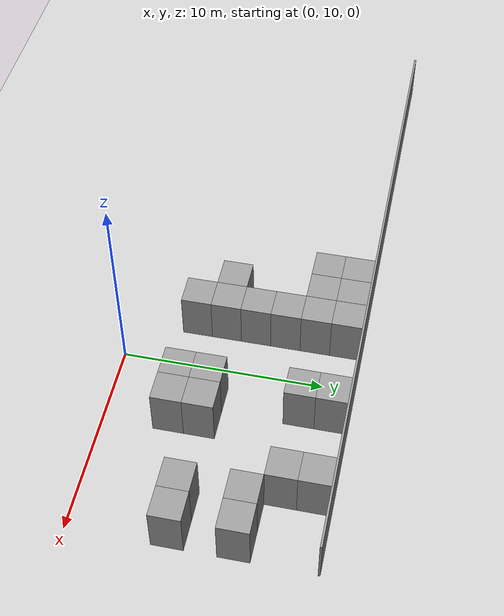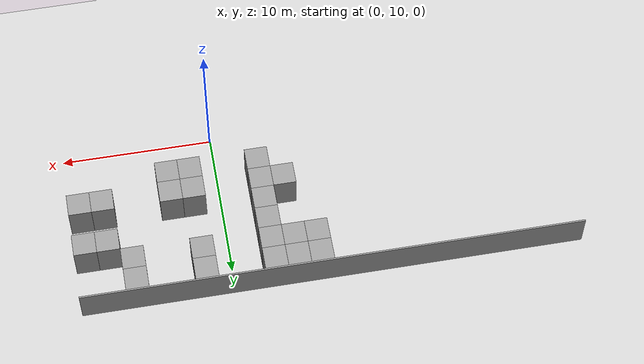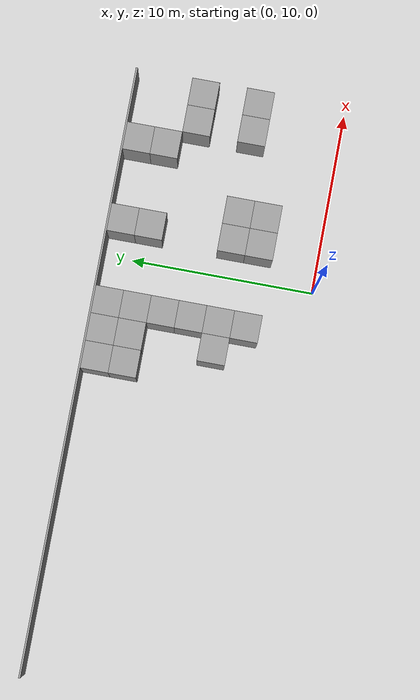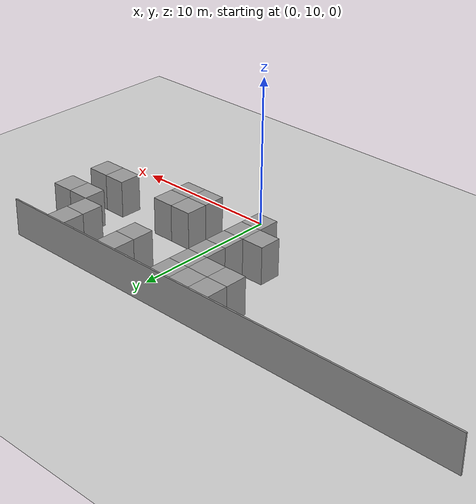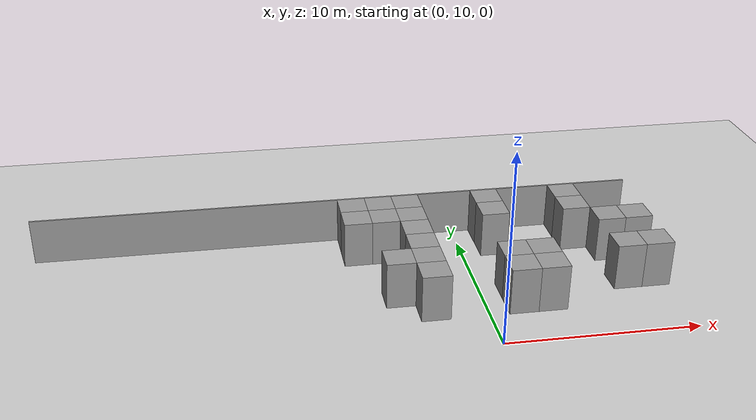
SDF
<sdf version="1.6">
 <world name="default">
  <model name="ground_plane">
   <static>1</static>
   <link name="link">
    <collision name="collision">
     <geometry><plane><normal>0 0 1</normal><size>100 100</size></plane></geometry>
     <surface><friction><ode><mu>100</mu><mu2>50</mu2></ode></friction></surface>
    </collision>
    <visual name="visual">
     <cast_shadows>0</cast_shadows>
     <geometry><plane><normal>0 0 1</normal><size>100 100</size></plane></geometry>
     <material>
      <script><uri>file://media/materials/scripts/gazebo.material</uri><name>Gazebo/Grey</name></script>
     </material>
    </visual>
   </link>
  </model>
  <model name="wall_1.5_1.5_14">
   <link name="Wall_2">
    <inertial>
     <mass>10</mass>
     <inertia><ixx>1</ixx><ixy>0</ixy><ixz>0</ixz><iyy>1</iyy><iyz>0</iyz><izz>1</izz></inertia>
    </inertial>
    <visual name="Wall_2_Visual">
     <pose>0 0 1.25 0 -0 0</pose>
     <geometry><box><size>1.5 1.5 2.5</size></box></geometry>
     <material>
      <script><uri>file://media/materials/scripts/gazebo.material</uri><name>Gazebo/Grey</name></script>
      <ambient>1 1 1 1</ambient>
      <diffuse>0.7 0.7 0.7 1</diffuse>
      <specular>0.01 0.01 0.01 1</specular>
      <emissive>0 0 0 1</emissive>
      <shader type="vertex"><normal_map>__default__</normal_map></shader>
     </material>
    </visual>
    <collision name="Wall_2_Collision">
     <pose>0 0 1.25 0 -0 0</pose>
     <geometry><box><size>1.5 1.5 2.5</size></box></geometry>
     <surface>
      <friction>
       <ode><mu>1</mu><mu2>1</mu2><fdir1>0 0 0</fdir1><slip1>0</slip1><slip2>0</slip2></ode>
       <torsional>
        <coefficient>1</coefficient>
        <patch_radius>0</patch_radius>
        <surface_radius>0</surface_radius>
        <use_patch_radius>1</use_patch_radius>
        <ode><slip>0</slip></ode>
       </torsional>
      </friction>
      <bounce><restitution_coefficient>0</restitution_coefficient><threshold>1e+06</threshold></bounce>
      <contact>
       <collide_without_contact>0</collide_without_contact>
       <collide_without_contact_bitmask>1</collide_without_contact_bitmask>
       <collide_bitmask>1</collide_bitmask>
       <ode>
        <soft_cfm>0</soft_cfm>
        <soft_erp>0.2</soft_erp>
        <kp>1e+13</kp>
        <kd>1</kd>
        <max_vel>0.01</max_vel>
        <min_depth>0</min_depth>
       </ode>
       <bullet>
        <split_impulse>1</split_impulse>
        <split_impulse_penetration_threshold>-0.01</split_impulse_penetration_threshold>
        <soft_cfm>0</soft_cfm>
        <soft_erp>0.2</soft_erp>
        <kp>1e+13</kp>
        <kd>1</kd>
       </bullet>
      </contact>
     </surface>
    </collision>
   </link>
   <static>1</static>
   <pose>9.25 14.75 0 0 -0 0</pose>
  </model>
  <model name="wall_1.5_1.5_15">
   <link name="Wall_2">
    <inertial>
     <mass>10</mass>
     <inertia><ixx>1</ixx><ixy>0</ixy><ixz>0</ixz><iyy>1</iyy><iyz>0</iyz><izz>1</izz></inertia>
    </inertial>
    <visual name="Wall_2_Visual">
     <pose>0 0 1.25 0 -0 0</pose>
     <geometry><box><size>1.5 1.5 2.5</size></box></geometry>
     <material>
      <script><uri>file://media/materials/scripts/gazebo.material</uri><name>Gazebo/Grey</name></script>
      <ambient>1 1 1 1</ambient>
      <diffuse>0.7 0.7 0.7 1</diffuse>
      <specular>0.01 0.01 0.01 1</specular>
      <emissive>0 0 0 1</emissive>
      <shader type="vertex"><normal_map>__default__</normal_map></shader>
     </material>
    </visual>
    <collision name="Wall_2_Collision">
     <pose>0 0 1.25 0 -0 0</pose>
     <geometry><box><size>1.5 1.5 2.5</size></box></geometry>
     <surface>
      <friction>
       <ode><mu>1</mu><mu2>1</mu2><fdir1>0 0 0</fdir1><slip1>0</slip1><slip2>0</slip2></ode>
       <torsional>
        <coefficient>1</coefficient>
        <patch_radius>0</patch_radius>
        <surface_radius>0</surface_radius>
        <use_patch_radius>1</use_patch_radius>
        <ode><slip>0</slip></ode>
       </torsional>
      </friction>
      <bounce><restitution_coefficient>0</restitution_coefficient><threshold>1e+06</threshold></bounce>
      <contact>
       <collide_without_contact>0</collide_without_contact>
       <collide_without_contact_bitmask>1</collide_without_contact_bitmask>
       <collide_bitmask>1</collide_bitmask>
       <ode>
        <soft_cfm>0</soft_cfm>
        <soft_erp>0.2</soft_erp>
        <kp>1e+13</kp>
        <kd>1</kd>
        <max_vel>0.01</max_vel>
        <min_depth>0</min_depth>
       </ode>
       <bullet>
        <split_impulse>1</split_impulse>
        <split_impulse_penetration_threshold>-0.01</split_impulse_penetration_threshold>
        <soft_cfm>0</soft_cfm>
        <soft_erp>0.2</soft_erp>
        <kp>1e+13</kp>
        <kd>1</kd>
       </bullet>
      </contact>
     </surface>
    </collision>
   </link>
   <static>1</static>
   <pose>9.25 17.75 0 0 -0 0</pose>
  </model>
  <model name="wall_1.5_1.5_17">
   <link name="Wall_2">
    <inertial>
     <mass>10</mass>
     <inertia><ixx>1</ixx><ixy>0</ixy><ixz>0</ixz><iyy>1</iyy><iyz>0</iyz><izz>1</izz></inertia>
    </inertial>
    <visual name="Wall_2_Visual">
     <pose>0 0 1.25 0 -0 0</pose>
     <geometry><box><size>1.5 1.5 2.5</size></box></geometry>
     <material>
      <script><uri>file://media/materials/scripts/gazebo.material</uri><name>Gazebo/Grey</name></script>
      <ambient>1 1 1 1</ambient>
      <diffuse>0.7 0.7 0.7 1</diffuse>
      <specular>0.01 0.01 0.01 1</specular>
      <emissive>0 0 0 1</emissive>
      <shader type="vertex"><normal_map>__default__</normal_map></shader>
     </material>
    </visual>
    <collision name="Wall_2_Collision">
     <pose>0 0 1.25 0 -0 0</pose>
     <geometry><box><size>1.5 1.5 2.5</size></box></geometry>
     <surface>
      <friction>
       <ode><mu>1</mu><mu2>1</mu2><fdir1>0 0 0</fdir1><slip1>0</slip1><slip2>0</slip2></ode>
       <torsional>
        <coefficient>1</coefficient>
        <patch_radius>0</patch_radius>
        <surface_radius>0</surface_radius>
        <use_patch_radius>1</use_patch_radius>
        <ode><slip>0</slip></ode>
       </torsional>
      </friction>
      <bounce><restitution_coefficient>0</restitution_coefficient><threshold>1e+06</threshold></bounce>
      <contact>
       <collide_without_contact>0</collide_without_contact>
       <collide_without_contact_bitmask>1</collide_without_contact_bitmask>
       <collide_bitmask>1</collide_bitmask>
       <ode>
        <soft_cfm>0</soft_cfm>
        <soft_erp>0.2</soft_erp>
        <kp>1e+13</kp>
        <kd>1</kd>
        <max_vel>0.01</max_vel>
        <min_depth>0</min_depth>
       </ode>
       <bullet>
        <split_impulse>1</split_impulse>
        <split_impulse_penetration_threshold>-0.01</split_impulse_penetration_threshold>
        <soft_cfm>0</soft_cfm>
        <soft_erp>0.2</soft_erp>
        <kp>1e+13</kp>
        <kd>1</kd>
       </bullet>
      </contact>
     </surface>
    </collision>
   </link>
   <static>1</static>
   <pose>7.75 14.75 0 0 -0 0</pose>
  </model>
  <model name="wall_1.5_1.5_18">
   <link name="Wall_2">
    <inertial>
     <mass>10</mass>
     <inertia><ixx>1</ixx><ixy>0</ixy><ixz>0</ixz><iyy>1</iyy><iyz>0</iyz><izz>1</izz></inertia>
    </inertial>
    <visual name="Wall_2_Visual">
     <pose>0 0 1.25 0 -0 0</pose>
     <geometry><box><size>1.5 1.5 2.5</size></box></geometry>
     <material>
      <script><uri>file://media/materials/scripts/gazebo.material</uri><name>Gazebo/Grey</name></script>
      <ambient>1 1 1 1</ambient>
      <diffuse>0.7 0.7 0.7 1</diffuse>
      <specular>0.01 0.01 0.01 1</specular>
      <emissive>0 0 0 1</emissive>
      <shader type="vertex"><normal_map>__default__</normal_map></shader>
     </material>
    </visual>
    <collision name="Wall_2_Collision">
     <pose>0 0 1.25 0 -0 0</pose>
     <geometry><box><size>1.5 1.5 2.5</size></box></geometry>
     <surface>
      <friction>
       <ode><mu>1</mu><mu2>1</mu2><fdir1>0 0 0</fdir1><slip1>0</slip1><slip2>0</slip2></ode>
       <torsional>
        <coefficient>1</coefficient>
        <patch_radius>0</patch_radius>
        <surface_radius>0</surface_radius>
        <use_patch_radius>1</use_patch_radius>
        <ode><slip>0</slip></ode>
       </torsional>
      </friction>
      <bounce><restitution_coefficient>0</restitution_coefficient><threshold>1e+06</threshold></bounce>
      <contact>
       <collide_without_contact>0</collide_without_contact>
       <collide_without_contact_bitmask>1</collide_without_contact_bitmask>
       <collide_bitmask>1</collide_bitmask>
       <ode>
        <soft_cfm>0</soft_cfm>
        <soft_erp>0.2</soft_erp>
        <kp>1e+13</kp>
        <kd>1</kd>
        <max_vel>0.01</max_vel>
        <min_depth>0</min_depth>
       </ode>
       <bullet>
        <split_impulse>1</split_impulse>
        <split_impulse_penetration_threshold>-0.01</split_impulse_penetration_threshold>
        <soft_cfm>0</soft_cfm>
        <soft_erp>0.2</soft_erp>
        <kp>1e+13</kp>
        <kd>1</kd>
       </bullet>
      </contact>
     </surface>
    </collision>
   </link>
   <static>1</static>
   <pose>7.75 17.75 0 0 -0 0</pose>
  </model>
  <model name="wall_1.5_1.5_19">
   <link name="Wall_2">
    <inertial>
     <mass>10</mass>
     <inertia><ixx>1</ixx><ixy>0</ixy><ixz>0</ixz><iyy>1</iyy><iyz>0</iyz><izz>1</izz></inertia>
    </inertial>
    <visual name="Wall_2_Visual">
     <pose>0 0 1.25 0 -0 0</pose>
     <geometry><box><size>1.5 1.5 2.5</size></box></geometry>
     <material>
      <script><uri>file://media/materials/scripts/gazebo.material</uri><name>Gazebo/Grey</name></script>
      <ambient>1 1 1 1</ambient>
      <diffuse>0.7 0.7 0.7 1</diffuse>
      <specular>0.01 0.01 0.01 1</specular>
      <emissive>0 0 0 1</emissive>
      <shader type="vertex"><normal_map>__default__</normal_map></shader>
     </material>
    </visual>
    <collision name="Wall_2_Collision">
     <pose>0 0 1.25 0 -0 0</pose>
     <geometry><box><size>1.5 1.5 2.5</size></box></geometry>
     <surface>
      <friction>
       <ode><mu>1</mu><mu2>1</mu2><fdir1>0 0 0</fdir1><slip1>0</slip1><slip2>0</slip2></ode>
       <torsional>
        <coefficient>1</coefficient>
        <patch_radius>0</patch_radius>
        <surface_radius>0</surface_radius>
        <use_patch_radius>1</use_patch_radius>
        <ode><slip>0</slip></ode>
       </torsional>
      </friction>
      <bounce><restitution_coefficient>0</restitution_coefficient><threshold>1e+06</threshold></bounce>
      <contact>
       <collide_without_contact>0</collide_without_contact>
       <collide_without_contact_bitmask>1</collide_without_contact_bitmask>
       <collide_bitmask>1</collide_bitmask>
       <ode>
        <soft_cfm>0</soft_cfm>
        <soft_erp>0.2</soft_erp>
        <kp>1e+13</kp>
        <kd>1</kd>
        <max_vel>0.01</max_vel>
        <min_depth>0</min_depth>
       </ode>
       <bullet>
        <split_impulse>1</split_impulse>
        <split_impulse_penetration_threshold>-0.01</split_impulse_penetration_threshold>
        <soft_cfm>0</soft_cfm>
        <soft_erp>0.2</soft_erp>
        <kp>1e+13</kp>
        <kd>1</kd>
       </bullet>
      </contact>
     </surface>
    </collision>
   </link>
   <static>1</static>
   <pose>6.25 20.75 0 0 -0 0</pose>
  </model>
  <model name="wall_1.5_1.5_20">
   <link name="Wall_2">
    <inertial>
     <mass>10</mass>
     <inertia><ixx>1</ixx><ixy>0</ixy><ixz>0</ixz><iyy>1</iyy><iyz>0</iyz><izz>1</izz></inertia>
    </inertial>
    <visual name="Wall_2_Visual">
     <pose>0 0 1.25 0 -0 0</pose>
     <geometry><box><size>1.5 1.5 2.5</size></box></geometry>
     <material>
      <script><uri>file://media/materials/scripts/gazebo.material</uri><name>Gazebo/Grey</name></script>
      <ambient>1 1 1 1</ambient>
      <diffuse>0.7 0.7 0.7 1</diffuse>
      <specular>0.01 0.01 0.01 1</specular>
      <emissive>0 0 0 1</emissive>
      <shader type="vertex"><normal_map>__default__</normal_map></shader>
     </material>
    </visual>
    <collision name="Wall_2_Collision">
     <pose>0 0 1.25 0 -0 0</pose>
     <geometry><box><size>1.5 1.5 2.5</size></box></geometry>
     <surface>
      <friction>
       <ode><mu>1</mu><mu2>1</mu2><fdir1>0 0 0</fdir1><slip1>0</slip1><slip2>0</slip2></ode>
       <torsional>
        <coefficient>1</coefficient>
        <patch_radius>0</patch_radius>
        <surface_radius>0</surface_radius>
        <use_patch_radius>1</use_patch_radius>
        <ode><slip>0</slip></ode>
       </torsional>
      </friction>
      <bounce><restitution_coefficient>0</restitution_coefficient><threshold>1e+06</threshold></bounce>
      <contact>
       <collide_without_contact>0</collide_without_contact>
       <collide_without_contact_bitmask>1</collide_without_contact_bitmask>
       <collide_bitmask>1</collide_bitmask>
       <ode>
        <soft_cfm>0</soft_cfm>
        <soft_erp>0.2</soft_erp>
        <kp>1e+13</kp>
        <kd>1</kd>
        <max_vel>0.01</max_vel>
        <min_depth>0</min_depth>
       </ode>
       <bullet>
        <split_impulse>1</split_impulse>
        <split_impulse_penetration_threshold>-0.01</split_impulse_penetration_threshold>
        <soft_cfm>0</soft_cfm>
        <soft_erp>0.2</soft_erp>
        <kp>1e+13</kp>
        <kd>1</kd>
       </bullet>
      </contact>
     </surface>
    </collision>
   </link>
   <static>1</static>
   <pose>1.75 20.75 0 0 -0 0</pose>
  </model>
  <model name="wall_1.5_1.5_35">
   <link name="Wall_2">
    <inertial>
     <mass>10</mass>
     <inertia><ixx>1</ixx><ixy>0</ixy><ixz>0</ixz><iyy>1</iyy><iyz>0</iyz><izz>1</izz></inertia>
    </inertial>
    <visual name="Wall_2_Visual">
     <pose>0 0 1.25 0 -0 0</pose>
     <geometry><box><size>1.5 1.5 2.5</size></box></geometry>
     <material>
      <script><uri>file://media/materials/scripts/gazebo.material</uri><name>Gazebo/Grey</name></script>
      <ambient>1 1 1 1</ambient>
      <diffuse>0.7 0.7 0.7 1</diffuse>
      <specular>0.01 0.01 0.01 1</specular>
      <emissive>0 0 0 1</emissive>
      <shader type="vertex"><normal_map>__default__</normal_map></shader>
     </material>
    </visual>
    <collision name="Wall_2_Collision">
     <pose>0 0 1.25 0 -0 0</pose>
     <geometry><box><size>1.5 1.5 2.5</size></box></geometry>
     <surface>
      <friction>
       <ode><mu>1</mu><mu2>1</mu2><fdir1>0 0 0</fdir1><slip1>0</slip1><slip2>0</slip2></ode>
       <torsional>
        <coefficient>1</coefficient>
        <patch_radius>0</patch_radius>
        <surface_radius>0</surface_radius>
        <use_patch_radius>1</use_patch_radius>
        <ode><slip>0</slip></ode>
       </torsional>
      </friction>
      <bounce><restitution_coefficient>0</restitution_coefficient><threshold>1e+06</threshold></bounce>
      <contact>
       <collide_without_contact>0</collide_without_contact>
       <collide_without_contact_bitmask>1</collide_without_contact_bitmask>
       <collide_bitmask>1</collide_bitmask>
       <ode>
        <soft_cfm>0</soft_cfm>
        <soft_erp>0.2</soft_erp>
        <kp>1e+13</kp>
        <kd>1</kd>
        <max_vel>0.01</max_vel>
        <min_depth>0</min_depth>
       </ode>
       <bullet>
        <split_impulse>1</split_impulse>
        <split_impulse_penetration_threshold>-0.01</split_impulse_penetration_threshold>
        <soft_cfm>0</soft_cfm>
        <soft_erp>0.2</soft_erp>
        <kp>1e+13</kp>
        <kd>1</kd>
       </bullet>
      </contact>
     </surface>
    </collision>
   </link>
   <static>1</static>
   <pose>1.75 13.25 0 0 -0 0</pose>
  </model>
  <model name="wall_1.5_1.5_36">
   <link name="Wall_2">
    <inertial>
     <mass>10</mass>
     <inertia><ixx>1</ixx><ixy>0</ixy><ixz>0</ixz><iyy>1</iyy><iyz>0</iyz><izz>1</izz></inertia>
    </inertial>
    <visual name="Wall_2_Visual">
     <pose>0 0 1.25 0 -0 0</pose>
     <geometry><box><size>1.5 1.5 2.5</size></box></geometry>
     <material>
      <script><uri>file://media/materials/scripts/gazebo.material</uri><name>Gazebo/Grey</name></script>
      <ambient>1 1 1 1</ambient>
      <diffuse>0.7 0.7 0.7 1</diffuse>
      <specular>0.01 0.01 0.01 1</specular>
      <emissive>0 0 0 1</emissive>
      <shader type="vertex"><normal_map>__default__</normal_map></shader>
     </material>
    </visual>
    <collision name="Wall_2_Collision">
     <pose>0 0 1.25 0 -0 0</pose>
     <geometry><box><size>1.5 1.5 2.5</size></box></geometry>
     <surface>
      <friction>
       <ode><mu>1</mu><mu2>1</mu2><fdir1>0 0 0</fdir1><slip1>0</slip1><slip2>0</slip2></ode>
       <torsional>
        <coefficient>1</coefficient>
        <patch_radius>0</patch_radius>
        <surface_radius>0</surface_radius>
        <use_patch_radius>1</use_patch_radius>
        <ode><slip>0</slip></ode>
       </torsional>
      </friction>
      <bounce><restitution_coefficient>0</restitution_coefficient><threshold>1e+06</threshold></bounce>
      <contact>
       <collide_without_contact>0</collide_without_contact>
       <collide_without_contact_bitmask>1</collide_without_contact_bitmask>
       <collide_bitmask>1</collide_bitmask>
       <ode>
        <soft_cfm>0</soft_cfm>
        <soft_erp>0.2</soft_erp>
        <kp>1e+13</kp>
        <kd>1</kd>
        <max_vel>0.01</max_vel>
        <min_depth>0</min_depth>
       </ode>
       <bullet>
        <split_impulse>1</split_impulse>
        <split_impulse_penetration_threshold>-0.01</split_impulse_penetration_threshold>
        <soft_cfm>0</soft_cfm>
        <soft_erp>0.2</soft_erp>
        <kp>1e+13</kp>
        <kd>1</kd>
       </bullet>
      </contact>
     </surface>
    </collision>
   </link>
   <static>1</static>
   <pose>3.25 13.25 0 0 -0 0</pose>
  </model>
  <model name="wall_1.5_1.5_37">
   <link name="Wall_2">
    <inertial>
     <mass>10</mass>
     <inertia><ixx>1</ixx><ixy>0</ixy><ixz>0</ixz><iyy>1</iyy><iyz>0</iyz><izz>1</izz></inertia>
    </inertial>
    <visual name="Wall_2_Visual">
     <pose>0 0 1.25 0 -0 0</pose>
     <geometry><box><size>1.5 1.5 2.5</size></box></geometry>
     <material>
      <script><uri>file://media/materials/scripts/gazebo.material</uri><name>Gazebo/Grey</name></script>
      <ambient>1 1 1 1</ambient>
      <diffuse>0.7 0.7 0.7 1</diffuse>
      <specular>0.01 0.01 0.01 1</specular>
      <emissive>0 0 0 1</emissive>
      <shader type="vertex"><normal_map>__default__</normal_map></shader>
     </material>
    </visual>
    <collision name="Wall_2_Collision">
     <pose>0 0 1.25 0 -0 0</pose>
     <geometry><box><size>1.5 1.5 2.5</size></box></geometry>
     <surface>
      <friction>
       <ode><mu>1</mu><mu2>1</mu2><fdir1>0 0 0</fdir1><slip1>0</slip1><slip2>0</slip2></ode>
       <torsional>
        <coefficient>1</coefficient>
        <patch_radius>0</patch_radius>
        <surface_radius>0</surface_radius>
        <use_patch_radius>1</use_patch_radius>
        <ode><slip>0</slip></ode>
       </torsional>
      </friction>
      <bounce><restitution_coefficient>0</restitution_coefficient><threshold>1e+06</threshold></bounce>
      <contact>
       <collide_without_contact>0</collide_without_contact>
       <collide_without_contact_bitmask>1</collide_without_contact_bitmask>
       <collide_bitmask>1</collide_bitmask>
       <ode>
        <soft_cfm>0</soft_cfm>
        <soft_erp>0.2</soft_erp>
        <kp>1e+13</kp>
        <kd>1</kd>
        <max_vel>0.01</max_vel>
        <min_depth>0</min_depth>
       </ode>
       <bullet>
        <split_impulse>1</split_impulse>
        <split_impulse_penetration_threshold>-0.01</split_impulse_penetration_threshold>
        <soft_cfm>0</soft_cfm>
        <soft_erp>0.2</soft_erp>
        <kp>1e+13</kp>
        <kd>1</kd>
       </bullet>
      </contact>
     </surface>
    </collision>
   </link>
   <static>1</static>
   <pose>1.75 19.25 0 0 -0 0</pose>
  </model>
  <model name="wall_1.5_1.5_38">
   <link name="Wall_2">
    <inertial>
     <mass>10</mass>
     <inertia><ixx>1</ixx><ixy>0</ixy><ixz>0</ixz><iyy>1</iyy><iyz>0</iyz><izz>1</izz></inertia>
    </inertial>
    <visual name="Wall_2_Visual">
     <pose>0 0 1.25 0 -0 0</pose>
     <geometry><box><size>1.5 1.5 2.5</size></box></geometry>
     <material>
      <script><uri>file://media/materials/scripts/gazebo.material</uri><name>Gazebo/Grey</name></script>
      <ambient>1 1 1 1</ambient>
      <diffuse>0.7 0.7 0.7 1</diffuse>
      <specular>0.01 0.01 0.01 1</specular>
      <emissive>0 0 0 1</emissive>
      <shader type="vertex"><normal_map>__default__</normal_map></shader>
     </material>
    </visual>
    <collision name="Wall_2_Collision">
     <pose>0 0 1.25 0 -0 0</pose>
     <geometry><box><size>1.5 1.5 2.5</size></box></geometry>
     <surface>
      <friction>
       <ode><mu>1</mu><mu2>1</mu2><fdir1>0 0 0</fdir1><slip1>0</slip1><slip2>0</slip2></ode>
       <torsional>
        <coefficient>1</coefficient>
        <patch_radius>0</patch_radius>
        <surface_radius>0</surface_radius>
        <use_patch_radius>1</use_patch_radius>
        <ode><slip>0</slip></ode>
       </torsional>
      </friction>
      <bounce><restitution_coefficient>0</restitution_coefficient><threshold>1e+06</threshold></bounce>
      <contact>
       <collide_without_contact>0</collide_without_contact>
       <collide_without_contact_bitmask>1</collide_without_contact_bitmask>
       <collide_bitmask>1</collide_bitmask>
       <ode>
        <soft_cfm>0</soft_cfm>
        <soft_erp>0.2</soft_erp>
        <kp>1e+13</kp>
        <kd>1</kd>
        <max_vel>0.01</max_vel>
        <min_depth>0</min_depth>
       </ode>
       <bullet>
        <split_impulse>1</split_impulse>
        <split_impulse_penetration_threshold>-0.01</split_impulse_penetration_threshold>
        <soft_cfm>0</soft_cfm>
        <soft_erp>0.2</soft_erp>
        <kp>1e+13</kp>
        <kd>1</kd>
       </bullet>
      </contact>
     </surface>
    </collision>
   </link>
   <static>1</static>
   <pose>1.75 14.75 0 0 -0 0</pose>
  </model>
  <model name="wall_1.5_1.5_39">
   <link name="Wall_2">
    <inertial>
     <mass>10</mass>
     <inertia><ixx>1</ixx><ixy>0</ixy><ixz>0</ixz><iyy>1</iyy><iyz>0</iyz><izz>1</izz></inertia>
    </inertial>
    <visual name="Wall_2_Visual">
     <pose>0 0 1.25 0 -0 0</pose>
     <geometry><box><size>1.5 1.5 2.5</size></box></geometry>
     <material>
      <script><uri>file://media/materials/scripts/gazebo.material</uri><name>Gazebo/Grey</name></script>
      <ambient>1 1 1 1</ambient>
      <diffuse>0.7 0.7 0.7 1</diffuse>
      <specular>0.01 0.01 0.01 1</specular>
      <emissive>0 0 0 1</emissive>
      <shader type="vertex"><normal_map>__default__</normal_map></shader>
     </material>
    </visual>
    <collision name="Wall_2_Collision">
     <pose>0 0 1.25 0 -0 0</pose>
     <geometry><box><size>1.5 1.5 2.5</size></box></geometry>
     <surface>
      <friction>
       <ode><mu>1</mu><mu2>1</mu2><fdir1>0 0 0</fdir1><slip1>0</slip1><slip2>0</slip2></ode>
       <torsional>
        <coefficient>1</coefficient>
        <patch_radius>0</patch_radius>
        <surface_radius>0</surface_radius>
        <use_patch_radius>1</use_patch_radius>
        <ode><slip>0</slip></ode>
       </torsional>
      </friction>
      <bounce><restitution_coefficient>0</restitution_coefficient><threshold>1e+06</threshold></bounce>
      <contact>
       <collide_without_contact>0</collide_without_contact>
       <collide_without_contact_bitmask>1</collide_without_contact_bitmask>
       <collide_bitmask>1</collide_bitmask>
       <ode>
        <soft_cfm>0</soft_cfm>
        <soft_erp>0.2</soft_erp>
        <kp>1e+13</kp>
        <kd>1</kd>
        <max_vel>0.01</max_vel>
        <min_depth>0</min_depth>
       </ode>
       <bullet>
        <split_impulse>1</split_impulse>
        <split_impulse_penetration_threshold>-0.01</split_impulse_penetration_threshold>
        <soft_cfm>0</soft_cfm>
        <soft_erp>0.2</soft_erp>
        <kp>1e+13</kp>
        <kd>1</kd>
       </bullet>
      </contact>
     </surface>
    </collision>
   </link>
   <static>1</static>
   <pose>3.25 14.75 0 0 -0 0</pose>
  </model>
  <model name="wall_1.5_1.5_40">
   <link name="Wall_2">
    <inertial>
     <mass>10</mass>
     <inertia><ixx>1</ixx><ixy>0</ixy><ixz>0</ixz><iyy>1</iyy><iyz>0</iyz><izz>1</izz></inertia>
    </inertial>
    <visual name="Wall_2_Visual">
     <pose>0 0 1.25 0 -0 0</pose>
     <geometry><box><size>1.5 1.5 2.5</size></box></geometry>
     <material>
      <script><uri>file://media/materials/scripts/gazebo.material</uri><name>Gazebo/Grey</name></script>
      <ambient>1 1 1 1</ambient>
      <diffuse>0.7 0.7 0.7 1</diffuse>
      <specular>0.01 0.01 0.01 1</specular>
      <emissive>0 0 0 1</emissive>
      <shader type="vertex"><normal_map>__default__</normal_map></shader>
     </material>
    </visual>
    <collision name="Wall_2_Collision">
     <pose>0 0 1.25 0 -0 0</pose>
     <geometry><box><size>1.5 1.5 2.5</size></box></geometry>
     <surface>
      <friction>
       <ode><mu>1</mu><mu2>1</mu2><fdir1>0 0 0</fdir1><slip1>0</slip1><slip2>0</slip2></ode>
       <torsional>
        <coefficient>1</coefficient>
        <patch_radius>0</patch_radius>
        <surface_radius>0</surface_radius>
        <use_patch_radius>1</use_patch_radius>
        <ode><slip>0</slip></ode>
       </torsional>
      </friction>
      <bounce><restitution_coefficient>0</restitution_coefficient><threshold>1e+06</threshold></bounce>
      <contact>
       <collide_without_contact>0</collide_without_contact>
       <collide_without_contact_bitmask>1</collide_without_contact_bitmask>
       <collide_bitmask>1</collide_bitmask>
       <ode>
        <soft_cfm>0</soft_cfm>
        <soft_erp>0.2</soft_erp>
        <kp>1e+13</kp>
        <kd>1</kd>
        <max_vel>0.01</max_vel>
        <min_depth>0</min_depth>
       </ode>
       <bullet>
        <split_impulse>1</split_impulse>
        <split_impulse_penetration_threshold>-0.01</split_impulse_penetration_threshold>
        <soft_cfm>0</soft_cfm>
        <soft_erp>0.2</soft_erp>
        <kp>1e+13</kp>
        <kd>1</kd>
       </bullet>
      </contact>
     </surface>
    </collision>
   </link>
   <static>1</static>
   <pose>6.25 19.25 0 0 -0 0</pose>
  </model>
  <model name="wall_1.5_1.5_70">
   <link name="Wall_2">
    <inertial>
     <mass>10</mass>
     <inertia><ixx>1</ixx><ixy>0</ixy><ixz>0</ixz><iyy>1</iyy><iyz>0</iyz><izz>1</izz></inertia>
    </inertial>
    <visual name="Wall_2_Visual">
     <pose>0 0 1.25 0 -0 0</pose>
     <geometry><box><size>1.5 1.5 2.5</size></box></geometry>
     <material>
      <script><uri>file://media/materials/scripts/gazebo.material</uri><name>Gazebo/Grey</name></script>
      <ambient>1 1 1 1</ambient>
      <diffuse>0.7 0.7 0.7 1</diffuse>
      <specular>0.01 0.01 0.01 1</specular>
      <emissive>0 0 0 1</emissive>
      <shader type="vertex"><normal_map>__default__</normal_map></shader>
     </material>
    </visual>
    <collision name="Wall_2_Collision">
     <pose>0 0 1.25 0 -0 0</pose>
     <geometry><box><size>1.5 1.5 2.5</size></box></geometry>
     <surface>
      <friction>
       <ode><mu>1</mu><mu2>1</mu2><fdir1>0 0 0</fdir1><slip1>0</slip1><slip2>0</slip2></ode>
       <torsional>
        <coefficient>1</coefficient>
        <patch_radius>0</patch_radius>
        <surface_radius>0</surface_radius>
        <use_patch_radius>1</use_patch_radius>
        <ode><slip>0</slip></ode>
       </torsional>
      </friction>
      <bounce><restitution_coefficient>0</restitution_coefficient><threshold>1e+06</threshold></bounce>
      <contact>
       <collide_without_contact>0</collide_without_contact>
       <collide_without_contact_bitmask>1</collide_without_contact_bitmask>
       <collide_bitmask>1</collide_bitmask>
       <ode>
        <soft_cfm>0</soft_cfm>
        <soft_erp>0.2</soft_erp>
        <kp>1e+13</kp>
        <kd>1</kd>
        <max_vel>0.01</max_vel>
        <min_depth>0</min_depth>
       </ode>
       <bullet>
        <split_impulse>1</split_impulse>
        <split_impulse_penetration_threshold>-0.01</split_impulse_penetration_threshold>
        <soft_cfm>0</soft_cfm>
        <soft_erp>0.2</soft_erp>
        <kp>1e+13</kp>
        <kd>1</kd>
       </bullet>
      </contact>
     </surface>
    </collision>
   </link>
   <static>1</static>
   <pose>-2.75 13.25 0 0 -0 0</pose>
  </model>
  <model name="wall_1.5_1.5_71">
   <link name="Wall_2">
    <inertial>
     <mass>10</mass>
     <inertia><ixx>1</ixx><ixy>0</ixy><ixz>0</ixz><iyy>1</iyy><iyz>0</iyz><izz>1</izz></inertia>
    </inertial>
    <visual name="Wall_2_Visual">
     <pose>0 0 1.25 0 -0 0</pose>
     <geometry><box><size>1.5 1.5 2.5</size></box></geometry>
     <material>
      <script><uri>file://media/materials/scripts/gazebo.material</uri><name>Gazebo/Grey</name></script>
      <ambient>1 1 1 1</ambient>
      <diffuse>0.7 0.7 0.7 1</diffuse>
      <specular>0.01 0.01 0.01 1</specular>
      <emissive>0 0 0 1</emissive>
      <shader type="vertex"><normal_map>__default__</normal_map></shader>
     </material>
    </visual>
    <collision name="Wall_2_Collision">
     <pose>0 0 1.25 0 -0 0</pose>
     <geometry><box><size>1.5 1.5 2.5</size></box></geometry>
     <surface>
      <friction>
       <ode><mu>1</mu><mu2>1</mu2><fdir1>0 0 0</fdir1><slip1>0</slip1><slip2>0</slip2></ode>
       <torsional>
        <coefficient>1</coefficient>
        <patch_radius>0</patch_radius>
        <surface_radius>0</surface_radius>
        <use_patch_radius>1</use_patch_radius>
        <ode><slip>0</slip></ode>
       </torsional>
      </friction>
      <bounce><restitution_coefficient>0</restitution_coefficient><threshold>1e+06</threshold></bounce>
      <contact>
       <collide_without_contact>0</collide_without_contact>
       <collide_without_contact_bitmask>1</collide_without_contact_bitmask>
       <collide_bitmask>1</collide_bitmask>
       <ode>
        <soft_cfm>0</soft_cfm>
        <soft_erp>0.2</soft_erp>
        <kp>1e+13</kp>
        <kd>1</kd>
        <max_vel>0.01</max_vel>
        <min_depth>0</min_depth>
       </ode>
       <bullet>
        <split_impulse>1</split_impulse>
        <split_impulse_penetration_threshold>-0.01</split_impulse_penetration_threshold>
        <soft_cfm>0</soft_cfm>
        <soft_erp>0.2</soft_erp>
        <kp>1e+13</kp>
        <kd>1</kd>
       </bullet>
      </contact>
     </surface>
    </collision>
   </link>
   <static>1</static>
   <pose>-2.75 14.75 0 0 -0 0</pose>
  </model>
  <model name="wall_1.5_1.5_72">
   <link name="Wall_2">
    <inertial>
     <mass>10</mass>
     <inertia><ixx>1</ixx><ixy>0</ixy><ixz>0</ixz><iyy>1</iyy><iyz>0</iyz><izz>1</izz></inertia>
    </inertial>
    <visual name="Wall_2_Visual">
     <pose>0 0 1.25 0 -0 0</pose>
     <geometry><box><size>1.5 1.5 2.5</size></box></geometry>
     <material>
      <script><uri>file://media/materials/scripts/gazebo.material</uri><name>Gazebo/Grey</name></script>
      <ambient>1 1 1 1</ambient>
      <diffuse>0.7 0.7 0.7 1</diffuse>
      <specular>0.01 0.01 0.01 1</specular>
      <emissive>0 0 0 1</emissive>
      <shader type="vertex"><normal_map>__default__</normal_map></shader>
     </material>
    </visual>
    <collision name="Wall_2_Collision">
     <pose>0 0 1.25 0 -0 0</pose>
     <geometry><box><size>1.5 1.5 2.5</size></box></geometry>
     <surface>
      <friction>
       <ode><mu>1</mu><mu2>1</mu2><fdir1>0 0 0</fdir1><slip1>0</slip1><slip2>0</slip2></ode>
       <torsional>
        <coefficient>1</coefficient>
        <patch_radius>0</patch_radius>
        <surface_radius>0</surface_radius>
        <use_patch_radius>1</use_patch_radius>
        <ode><slip>0</slip></ode>
       </torsional>
      </friction>
      <bounce><restitution_coefficient>0</restitution_coefficient><threshold>1e+06</threshold></bounce>
      <contact>
       <collide_without_contact>0</collide_without_contact>
       <collide_without_contact_bitmask>1</collide_without_contact_bitmask>
       <collide_bitmask>1</collide_bitmask>
       <ode>
        <soft_cfm>0</soft_cfm>
        <soft_erp>0.2</soft_erp>
        <kp>1e+13</kp>
        <kd>1</kd>
        <max_vel>0.01</max_vel>
        <min_depth>0</min_depth>
       </ode>
       <bullet>
        <split_impulse>1</split_impulse>
        <split_impulse_penetration_threshold>-0.01</split_impulse_penetration_threshold>
        <soft_cfm>0</soft_cfm>
        <soft_erp>0.2</soft_erp>
        <kp>1e+13</kp>
        <kd>1</kd>
       </bullet>
      </contact>
     </surface>
    </collision>
   </link>
   <static>1</static>
   <pose>-2.75 16.25 0 0 -0 0</pose>
  </model>
  <model name="wall_1.5_1.5_73">
   <link name="Wall_2">
    <inertial>
     <mass>10</mass>
     <inertia><ixx>1</ixx><ixy>0</ixy><ixz>0</ixz><iyy>1</iyy><iyz>0</iyz><izz>1</izz></inertia>
    </inertial>
    <visual name="Wall_2_Visual">
     <pose>0 0 1.25 0 -0 0</pose>
     <geometry><box><size>1.5 1.5 2.5</size></box></geometry>
     <material>
      <script><uri>file://media/materials/scripts/gazebo.material</uri><name>Gazebo/Grey</name></script>
      <ambient>1 1 1 1</ambient>
      <diffuse>0.7 0.7 0.7 1</diffuse>
      <specular>0.01 0.01 0.01 1</specular>
      <emissive>0 0 0 1</emissive>
      <shader type="vertex"><normal_map>__default__</normal_map></shader>
     </material>
    </visual>
    <collision name="Wall_2_Collision">
     <pose>0 0 1.25 0 -0 0</pose>
     <geometry><box><size>1.5 1.5 2.5</size></box></geometry>
     <surface>
      <friction>
       <ode><mu>1</mu><mu2>1</mu2><fdir1>0 0 0</fdir1><slip1>0</slip1><slip2>0</slip2></ode>
       <torsional>
        <coefficient>1</coefficient>
        <patch_radius>0</patch_radius>
        <surface_radius>0</surface_radius>
        <use_patch_radius>1</use_patch_radius>
        <ode><slip>0</slip></ode>
       </torsional>
      </friction>
      <bounce><restitution_coefficient>0</restitution_coefficient><threshold>1e+06</threshold></bounce>
      <contact>
       <collide_without_contact>0</collide_without_contact>
       <collide_without_contact_bitmask>1</collide_without_contact_bitmask>
       <collide_bitmask>1</collide_bitmask>
       <ode>
        <soft_cfm>0</soft_cfm>
        <soft_erp>0.2</soft_erp>
        <kp>1e+13</kp>
        <kd>1</kd>
        <max_vel>0.01</max_vel>
        <min_depth>0</min_depth>
       </ode>
       <bullet>
        <split_impulse>1</split_impulse>
        <split_impulse_penetration_threshold>-0.01</split_impulse_penetration_threshold>
        <soft_cfm>0</soft_cfm>
        <soft_erp>0.2</soft_erp>
        <kp>1e+13</kp>
        <kd>1</kd>
       </bullet>
      </contact>
     </surface>
    </collision>
   </link>
   <static>1</static>
   <pose>-2.75 17.75 0 0 -0 0</pose>
  </model>
  <model name="wall_1.5_1.5_74">
   <link name="Wall_2">
    <inertial>
     <mass>10</mass>
     <inertia><ixx>1</ixx><ixy>0</ixy><ixz>0</ixz><iyy>1</iyy><iyz>0</iyz><izz>1</izz></inertia>
    </inertial>
    <visual name="Wall_2_Visual">
     <pose>0 0 1.25 0 -0 0</pose>
     <geometry><box><size>1.5 1.5 2.5</size></box></geometry>
     <material>
      <script><uri>file://media/materials/scripts/gazebo.material</uri><name>Gazebo/Grey</name></script>
      <ambient>1 1 1 1</ambient>
      <diffuse>0.7 0.7 0.7 1</diffuse>
      <specular>0.01 0.01 0.01 1</specular>
      <emissive>0 0 0 1</emissive>
      <shader type="vertex"><normal_map>__default__</normal_map></shader>
     </material>
    </visual>
    <collision name="Wall_2_Collision">
     <pose>0 0 1.25 0 -0 0</pose>
     <geometry><box><size>1.5 1.5 2.5</size></box></geometry>
     <surface>
      <friction>
       <ode><mu>1</mu><mu2>1</mu2><fdir1>0 0 0</fdir1><slip1>0</slip1><slip2>0</slip2></ode>
       <torsional>
        <coefficient>1</coefficient>
        <patch_radius>0</patch_radius>
        <surface_radius>0</surface_radius>
        <use_patch_radius>1</use_patch_radius>
        <ode><slip>0</slip></ode>
       </torsional>
      </friction>
      <bounce><restitution_coefficient>0</restitution_coefficient><threshold>1e+06</threshold></bounce>
      <contact>
       <collide_without_contact>0</collide_without_contact>
       <collide_without_contact_bitmask>1</collide_without_contact_bitmask>
       <collide_bitmask>1</collide_bitmask>
       <ode>
        <soft_cfm>0</soft_cfm>
        <soft_erp>0.2</soft_erp>
        <kp>1e+13</kp>
        <kd>1</kd>
        <max_vel>0.01</max_vel>
        <min_depth>0</min_depth>
       </ode>
       <bullet>
        <split_impulse>1</split_impulse>
        <split_impulse_penetration_threshold>-0.01</split_impulse_penetration_threshold>
        <soft_cfm>0</soft_cfm>
        <soft_erp>0.2</soft_erp>
        <kp>1e+13</kp>
        <kd>1</kd>
       </bullet>
      </contact>
     </surface>
    </collision>
   </link>
   <static>1</static>
   <pose>-2.75 19.25 0 0 -0 0</pose>
  </model>
  <model name="wall_1.5_1.5_75">
   <link name="Wall_2">
    <inertial>
     <mass>10</mass>
     <inertia><ixx>1</ixx><ixy>0</ixy><ixz>0</ixz><iyy>1</iyy><iyz>0</iyz><izz>1</izz></inertia>
    </inertial>
    <visual name="Wall_2_Visual">
     <pose>0 0 1.25 0 -0 0</pose>
     <geometry><box><size>1.5 1.5 2.5</size></box></geometry>
     <material>
      <script><uri>file://media/materials/scripts/gazebo.material</uri><name>Gazebo/Grey</name></script>
      <ambient>1 1 1 1</ambient>
      <diffuse>0.7 0.7 0.7 1</diffuse>
      <specular>0.01 0.01 0.01 1</specular>
      <emissive>0 0 0 1</emissive>
      <shader type="vertex"><normal_map>__default__</normal_map></shader>
     </material>
    </visual>
    <collision name="Wall_2_Collision">
     <pose>0 0 1.25 0 -0 0</pose>
     <geometry><box><size>1.5 1.5 2.5</size></box></geometry>
     <surface>
      <friction>
       <ode><mu>1</mu><mu2>1</mu2><fdir1>0 0 0</fdir1><slip1>0</slip1><slip2>0</slip2></ode>
       <torsional>
        <coefficient>1</coefficient>
        <patch_radius>0</patch_radius>
        <surface_radius>0</surface_radius>
        <use_patch_radius>1</use_patch_radius>
        <ode><slip>0</slip></ode>
       </torsional>
      </friction>
      <bounce><restitution_coefficient>0</restitution_coefficient><threshold>1e+06</threshold></bounce>
      <contact>
       <collide_without_contact>0</collide_without_contact>
       <collide_without_contact_bitmask>1</collide_without_contact_bitmask>
       <collide_bitmask>1</collide_bitmask>
       <ode>
        <soft_cfm>0</soft_cfm>
        <soft_erp>0.2</soft_erp>
        <kp>1e+13</kp>
        <kd>1</kd>
        <max_vel>0.01</max_vel>
        <min_depth>0</min_depth>
       </ode>
       <bullet>
        <split_impulse>1</split_impulse>
        <split_impulse_penetration_threshold>-0.01</split_impulse_penetration_threshold>
        <soft_cfm>0</soft_cfm>
        <soft_erp>0.2</soft_erp>
        <kp>1e+13</kp>
        <kd>1</kd>
       </bullet>
      </contact>
     </surface>
    </collision>
   </link>
   <static>1</static>
   <pose>-2.75 20.75 0 0 -0 0</pose>
  </model>
  <model name="wall_1.5_1.5_76">
   <link name="Wall_2">
    <inertial>
     <mass>10</mass>
     <inertia><ixx>1</ixx><ixy>0</ixy><ixz>0</ixz><iyy>1</iyy><iyz>0</iyz><izz>1</izz></inertia>
    </inertial>
    <visual name="Wall_2_Visual">
     <pose>0 0 1.25 0 -0 0</pose>
     <geometry><box><size>1.5 1.5 2.5</size></box></geometry>
     <material>
      <script><uri>file://media/materials/scripts/gazebo.material</uri><name>Gazebo/Grey</name></script>
      <ambient>1 1 1 1</ambient>
      <diffuse>0.7 0.7 0.7 1</diffuse>
      <specular>0.01 0.01 0.01 1</specular>
      <emissive>0 0 0 1</emissive>
      <shader type="vertex"><normal_map>__default__</normal_map></shader>
     </material>
    </visual>
    <collision name="Wall_2_Collision">
     <pose>0 0 1.25 0 -0 0</pose>
     <geometry><box><size>1.5 1.5 2.5</size></box></geometry>
     <surface>
      <friction>
       <ode><mu>1</mu><mu2>1</mu2><fdir1>0 0 0</fdir1><slip1>0</slip1><slip2>0</slip2></ode>
       <torsional>
        <coefficient>1</coefficient>
        <patch_radius>0</patch_radius>
        <surface_radius>0</surface_radius>
        <use_patch_radius>1</use_patch_radius>
        <ode><slip>0</slip></ode>
       </torsional>
      </friction>
      <bounce><restitution_coefficient>0</restitution_coefficient><threshold>1e+06</threshold></bounce>
      <contact>
       <collide_without_contact>0</collide_without_contact>
       <collide_without_contact_bitmask>1</collide_without_contact_bitmask>
       <collide_bitmask>1</collide_bitmask>
       <ode>
        <soft_cfm>0</soft_cfm>
        <soft_erp>0.2</soft_erp>
        <kp>1e+13</kp>
        <kd>1</kd>
        <max_vel>0.01</max_vel>
        <min_depth>0</min_depth>
       </ode>
       <bullet>
        <split_impulse>1</split_impulse>
        <split_impulse_penetration_threshold>-0.01</split_impulse_penetration_threshold>
        <soft_cfm>0</soft_cfm>
        <soft_erp>0.2</soft_erp>
        <kp>1e+13</kp>
        <kd>1</kd>
       </bullet>
      </contact>
     </surface>
    </collision>
   </link>
   <static>1</static>
   <pose>-4.25 20.75 0 0 -0 0</pose>
  </model>
  <model name="wall_1.5_1.5_77">
   <link name="Wall_2">
    <inertial>
     <mass>10</mass>
     <inertia><ixx>1</ixx><ixy>0</ixy><ixz>0</ixz><iyy>1</iyy><iyz>0</iyz><izz>1</izz></inertia>
    </inertial>
    <visual name="Wall_2_Visual">
     <pose>0 0 1.25 0 -0 0</pose>
     <geometry><box><size>1.5 1.5 2.5</size></box></geometry>
     <material>
      <script><uri>file://media/materials/scripts/gazebo.material</uri><name>Gazebo/Grey</name></script>
      <ambient>1 1 1 1</ambient>
      <diffuse>0.7 0.7 0.7 1</diffuse>
      <specular>0.01 0.01 0.01 1</specular>
      <emissive>0 0 0 1</emissive>
      <shader type="vertex"><normal_map>__default__</normal_map></shader>
     </material>
    </visual>
    <collision name="Wall_2_Collision">
     <pose>0 0 1.25 0 -0 0</pose>
     <geometry><box><size>1.5 1.5 2.5</size></box></geometry>
     <surface>
      <friction>
       <ode><mu>1</mu><mu2>1</mu2><fdir1>0 0 0</fdir1><slip1>0</slip1><slip2>0</slip2></ode>
       <torsional>
        <coefficient>1</coefficient>
        <patch_radius>0</patch_radius>
        <surface_radius>0</surface_radius>
        <use_patch_radius>1</use_patch_radius>
        <ode><slip>0</slip></ode>
       </torsional>
      </friction>
      <bounce><restitution_coefficient>0</restitution_coefficient><threshold>1e+06</threshold></bounce>
      <contact>
       <collide_without_contact>0</collide_without_contact>
       <collide_without_contact_bitmask>1</collide_without_contact_bitmask>
       <collide_bitmask>1</collide_bitmask>
       <ode>
        <soft_cfm>0</soft_cfm>
        <soft_erp>0.2</soft_erp>
        <kp>1e+13</kp>
        <kd>1</kd>
        <max_vel>0.01</max_vel>
        <min_depth>0</min_depth>
       </ode>
       <bullet>
        <split_impulse>1</split_impulse>
        <split_impulse_penetration_threshold>-0.01</split_impulse_penetration_threshold>
        <soft_cfm>0</soft_cfm>
        <soft_erp>0.2</soft_erp>
        <kp>1e+13</kp>
        <kd>1</kd>
       </bullet>
      </contact>
     </surface>
    </collision>
   </link>
   <static>1</static>
   <pose>-5.75 20.75 0 0 -0 0</pose>
  </model>
  <model name="wall_1.5_1.5_85">
   <link name="Wall_2">
    <inertial>
     <mass>10</mass>
     <inertia><ixx>1</ixx><ixy>0</ixy><ixz>0</ixz><iyy>1</iyy><iyz>0</iyz><izz>1</izz></inertia>
    </inertial>
    <visual name="Wall_2_Visual">
     <pose>0 0 1.25 0 -0 0</pose>
     <geometry><box><size>1.5 1.5 2.5</size></box></geometry>
     <material>
      <script><uri>file://media/materials/scripts/gazebo.material</uri><name>Gazebo/Grey</name></script>
      <ambient>1 1 1 1</ambient>
      <diffuse>0.7 0.7 0.7 1</diffuse>
      <specular>0.01 0.01 0.01 1</specular>
      <emissive>0 0 0 1</emissive>
      <shader type="vertex"><normal_map>__default__</normal_map></shader>
     </material>
    </visual>
    <collision name="Wall_2_Collision">
     <pose>0 0 1.25 0 -0 0</pose>
     <geometry><box><size>1.5 1.5 2.5</size></box></geometry>
     <surface>
      <friction>
       <ode><mu>1</mu><mu2>1</mu2><fdir1>0 0 0</fdir1><slip1>0</slip1><slip2>0</slip2></ode>
       <torsional>
        <coefficient>1</coefficient>
        <patch_radius>0</patch_radius>
        <surface_radius>0</surface_radius>
        <use_patch_radius>1</use_patch_radius>
        <ode><slip>0</slip></ode>
       </torsional>
      </friction>
      <bounce><restitution_coefficient>0</restitution_coefficient><threshold>1e+06</threshold></bounce>
      <contact>
       <collide_without_contact>0</collide_without_contact>
       <collide_without_contact_bitmask>1</collide_without_contact_bitmask>
       <collide_bitmask>1</collide_bitmask>
       <ode>
        <soft_cfm>0</soft_cfm>
        <soft_erp>0.2</soft_erp>
        <kp>1e+13</kp>
        <kd>1</kd>
        <max_vel>0.01</max_vel>
        <min_depth>0</min_depth>
       </ode>
       <bullet>
        <split_impulse>1</split_impulse>
        <split_impulse_penetration_threshold>-0.01</split_impulse_penetration_threshold>
        <soft_cfm>0</soft_cfm>
        <soft_erp>0.2</soft_erp>
        <kp>1e+13</kp>
        <kd>1</kd>
       </bullet>
      </contact>
     </surface>
    </collision>
   </link>
   <static>1</static>
   <pose>-4.25 14.75 0 0 -0 0</pose>
  </model>
  <model name="wall_1.5_1.5_89">
   <link name="Wall_2">
    <inertial>
     <mass>10</mass>
     <inertia><ixx>1</ixx><ixy>0</ixy><ixz>0</ixz><iyy>1</iyy><iyz>0</iyz><izz>1</izz></inertia>
    </inertial>
    <visual name="Wall_2_Visual">
     <pose>0 0 1.25 0 -0 0</pose>
     <geometry><box><size>1.5 1.5 2.5</size></box></geometry>
     <material>
      <script><uri>file://media/materials/scripts/gazebo.material</uri><name>Gazebo/Grey</name></script>
      <ambient>1 1 1 1</ambient>
      <diffuse>0.7 0.7 0.7 1</diffuse>
      <specular>0.01 0.01 0.01 1</specular>
      <emissive>0 0 0 1</emissive>
      <shader type="vertex"><normal_map>__default__</normal_map></shader>
     </material>
    </visual>
    <collision name="Wall_2_Collision">
     <pose>0 0 1.25 0 -0 0</pose>
     <geometry><box><size>1.5 1.5 2.5</size></box></geometry>
     <surface>
      <friction>
       <ode><mu>1</mu><mu2>1</mu2><fdir1>0 0 0</fdir1><slip1>0</slip1><slip2>0</slip2></ode>
       <torsional>
        <coefficient>1</coefficient>
        <patch_radius>0</patch_radius>
        <surface_radius>0</surface_radius>
        <use_patch_radius>1</use_patch_radius>
        <ode><slip>0</slip></ode>
       </torsional>
      </friction>
      <bounce><restitution_coefficient>0</restitution_coefficient><threshold>1e+06</threshold></bounce>
      <contact>
       <collide_without_contact>0</collide_without_contact>
       <collide_without_contact_bitmask>1</collide_without_contact_bitmask>
       <collide_bitmask>1</collide_bitmask>
       <ode>
        <soft_cfm>0</soft_cfm>
        <soft_erp>0.2</soft_erp>
        <kp>1e+13</kp>
        <kd>1</kd>
        <max_vel>0.01</max_vel>
        <min_depth>0</min_depth>
       </ode>
       <bullet>
        <split_impulse>1</split_impulse>
        <split_impulse_penetration_threshold>-0.01</split_impulse_penetration_threshold>
        <soft_cfm>0</soft_cfm>
        <soft_erp>0.2</soft_erp>
        <kp>1e+13</kp>
        <kd>1</kd>
       </bullet>
      </contact>
     </surface>
    </collision>
   </link>
   <static>1</static>
   <pose>-4.25 19.25 0 0 -0 0</pose>
  </model>
  <model name="wall_1.5_1.5_90">
   <link name="Wall_2">
    <inertial>
     <mass>10</mass>
     <inertia><ixx>1</ixx><ixy>0</ixy><ixz>0</ixz><iyy>1</iyy><iyz>0</iyz><izz>1</izz></inertia>
    </inertial>
    <visual name="Wall_2_Visual">
     <pose>0 0 1.25 0 -0 0</pose>
     <geometry><box><size>1.5 1.5 2.5</size></box></geometry>
     <material>
      <script><uri>file://media/materials/scripts/gazebo.material</uri><name>Gazebo/Grey</name></script>
      <ambient>1 1 1 1</ambient>
      <diffuse>0.7 0.7 0.7 1</diffuse>
      <specular>0.01 0.01 0.01 1</specular>
      <emissive>0 0 0 1</emissive>
      <shader type="vertex"><normal_map>__default__</normal_map></shader>
     </material>
    </visual>
    <collision name="Wall_2_Collision">
     <pose>0 0 1.25 0 -0 0</pose>
     <geometry><box><size>1.5 1.5 2.5</size></box></geometry>
     <surface>
      <friction>
       <ode><mu>1</mu><mu2>1</mu2><fdir1>0 0 0</fdir1><slip1>0</slip1><slip2>0</slip2></ode>
       <torsional>
        <coefficient>1</coefficient>
        <patch_radius>0</patch_radius>
        <surface_radius>0</surface_radius>
        <use_patch_radius>1</use_patch_radius>
        <ode><slip>0</slip></ode>
       </torsional>
      </friction>
      <bounce><restitution_coefficient>0</restitution_coefficient><threshold>1e+06</threshold></bounce>
      <contact>
       <collide_without_contact>0</collide_without_contact>
       <collide_without_contact_bitmask>1</collide_without_contact_bitmask>
       <collide_bitmask>1</collide_bitmask>
       <ode>
        <soft_cfm>0</soft_cfm>
        <soft_erp>0.2</soft_erp>
        <kp>1e+13</kp>
        <kd>1</kd>
        <max_vel>0.01</max_vel>
        <min_depth>0</min_depth>
       </ode>
       <bullet>
        <split_impulse>1</split_impulse>
        <split_impulse_penetration_threshold>-0.01</split_impulse_penetration_threshold>
        <soft_cfm>0</soft_cfm>
        <soft_erp>0.2</soft_erp>
        <kp>1e+13</kp>
        <kd>1</kd>
       </bullet>
      </contact>
     </surface>
    </collision>
   </link>
   <static>1</static>
   <pose>-5.75 19.25 0 0 -0 0</pose>
  </model>
  <model name="wall_33_0">
   <link name="Wall_13">
    <inertial>
     <mass>10</mass>
     <inertia><ixx>1</ixx><ixy>0</ixy><ixz>0</ixz><iyy>1</iyy><iyz>0</iyz><izz>1</izz></inertia>
    </inertial>
    <visual name="Wall_13_Visual">
     <pose>0 0 1.25 0 -0 0</pose>
     <geometry><box><size>33 0.1 2.5</size></box></geometry>
     <material>
      <script><uri>file://media/materials/scripts/gazebo.material</uri><name>Gazebo/Grey</name></script>
      <ambient>1 1 1 1</ambient>
      <diffuse>0.7 0.7 0.7 1</diffuse>
      <specular>0.01 0.01 0.01 1</specular>
      <emissive>0 0 0 1</emissive>
      <shader type="vertex"><normal_map>__default__</normal_map></shader>
     </material>
    </visual>
    <collision name="Wall_13_Collision">
     <pose>0 0 1.25 0 -0 0</pose>
     <geometry><box><size>33 0.1 2.5</size></box></geometry>
     <surface>
      <friction>
       <ode><mu>1</mu><mu2>1</mu2><fdir1>0 0 0</fdir1><slip1>0</slip1><slip2>0</slip2></ode>
       <torsional>
        <coefficient>1</coefficient>
        <patch_radius>0</patch_radius>
        <surface_radius>0</surface_radius>
        <use_patch_radius>1</use_patch_radius>
        <ode><slip>0</slip></ode>
       </torsional>
      </friction>
      <bounce><restitution_coefficient>0</restitution_coefficient><threshold>1e+06</threshold></bounce>
      <contact>
       <collide_without_contact>0</collide_without_contact>
       <collide_without_contact_bitmask>1</collide_without_contact_bitmask>
       <collide_bitmask>1</collide_bitmask>
       <ode>
        <soft_cfm>0</soft_cfm>
        <soft_erp>0.2</soft_erp>
        <kp>1e+13</kp>
        <kd>1</kd>
        <max_vel>0.01</max_vel>
        <min_depth>0</min_depth>
       </ode>
       <bullet>
        <split_impulse>1</split_impulse>
        <split_impulse_penetration_threshold>-0.01</split_impulse_penetration_threshold>
        <soft_cfm>0</soft_cfm>
        <soft_erp>0.2</soft_erp>
        <kp>1e+13</kp>
        <kd>1</kd>
       </bullet>
      </contact>
     </surface>
    </collision>
   </link>
   <static>1</static>
   <pose>-6.5 21.55 0 0 -0 0</pose>
  </model>
 </world>
</sdf>
